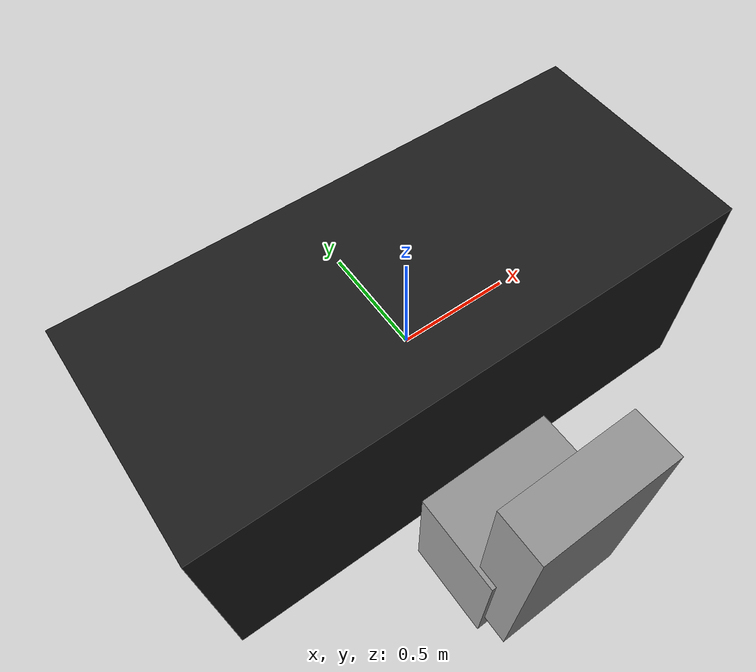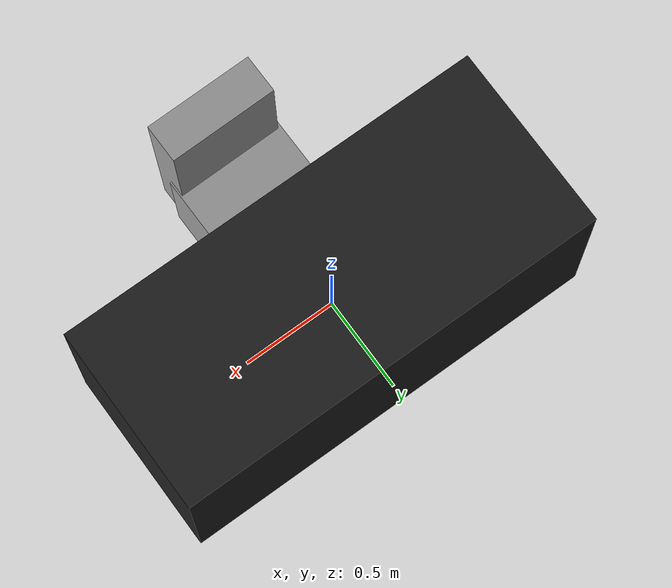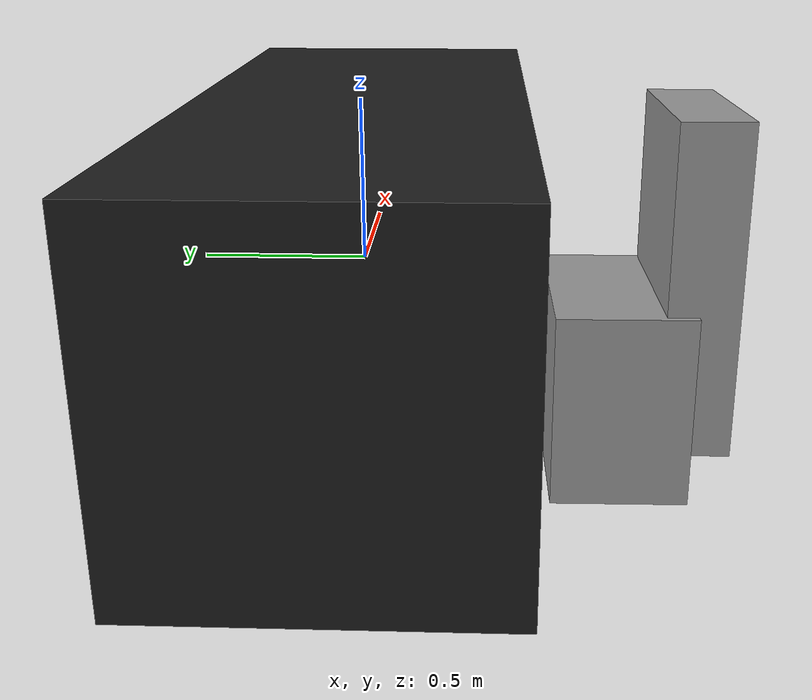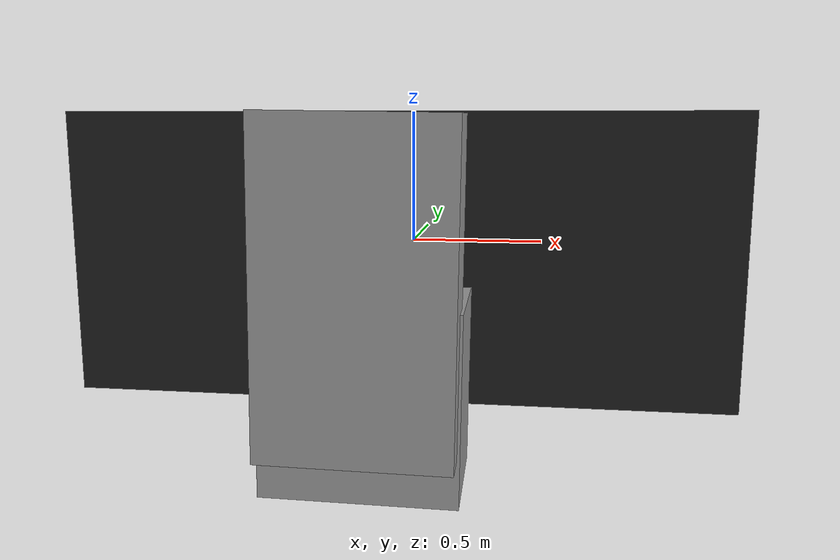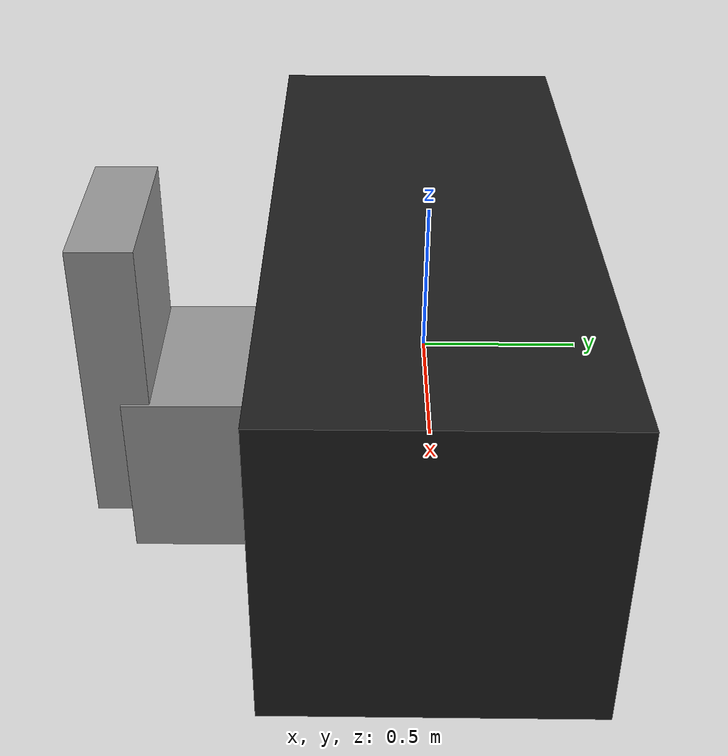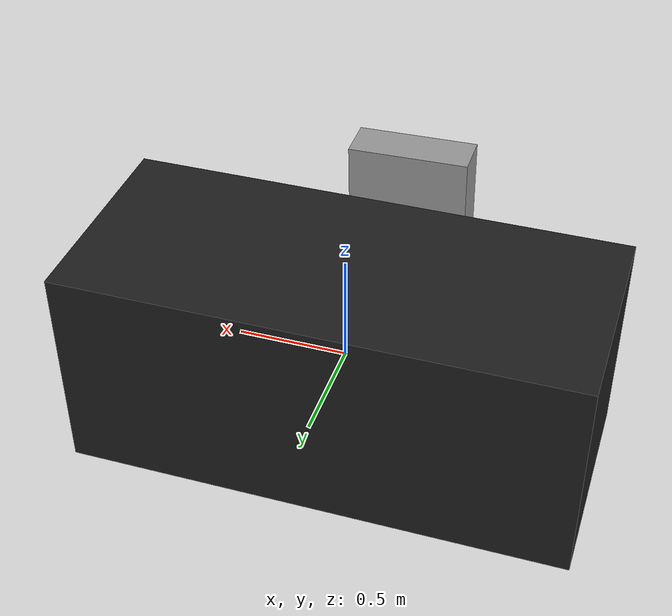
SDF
<?xml version='1.0'?>
<sdf version='1.7'>
  <model name='chair_table'>
    <link name='link'>
      <inertial>
        <mass>2.31605</mass>
        <inertia>
          <ixx>0.386008</ixx>
          <ixy>0</ixy>
          <ixz>0</ixz>
          <iyy>1.22828</iyy>
          <iyz>0</iyz>
          <izz>1.22828</izz>
        </inertia>
        <pose>0 0 0 0 -0 0</pose>
      </inertial>
      <self_collide>0</self_collide>
      <enable_wind>0</enable_wind>
      <kinematic>0</kinematic>
      <pose>0 0 0 0 -0 0</pose>
      <visual name='visual'>
        <geometry>
          <box>
            <size>2.31604 1 1</size>
          </box>
        </geometry>
        <material>
          <script>
            <name>Gazebo/Black</name>
            <uri>file://media/materials/scripts/gazebo.material</uri>
          </script>
          <shader type='pixel'/>
        </material>
        <pose>0 0 0 0 -0 0</pose>
        <transparency>0</transparency>
        <cast_shadows>1</cast_shadows>
      </visual>
      <collision name='collision'>
        <laser_retro>0</laser_retro>
        <max_contacts>10</max_contacts>
        <pose>0 0 0 0 -0 0</pose>
        <geometry>
          <box>
            <size>2.31604 1 1</size>
          </box>
        </geometry>
        <surface>
          <friction>
            <ode>
              <mu>1</mu>
              <mu2>1</mu2>
              <fdir1>0 0 0</fdir1>
              <slip1>0</slip1>
              <slip2>0</slip2>
            </ode>
            <torsional>
              <coefficient>1</coefficient>
              <patch_radius>0</patch_radius>
              <surface_radius>0</surface_radius>
              <use_patch_radius>1</use_patch_radius>
              <ode>
                <slip>0</slip>
              </ode>
            </torsional>
          </friction>
          <bounce>
            <restitution_coefficient>0</restitution_coefficient>
            <threshold>1e+06</threshold>
          </bounce>
          <contact>
            <collide_without_contact>0</collide_without_contact>
            <collide_without_contact_bitmask>1</collide_without_contact_bitmask>
            <collide_bitmask>1</collide_bitmask>
            <ode>
              <soft_cfm>0</soft_cfm>
              <soft_erp>0.2</soft_erp>
              <kp>1e+13</kp>
              <kd>1</kd>
              <max_vel>0.01</max_vel>
              <min_depth>0</min_depth>
            </ode>
            <bullet>
              <split_impulse>1</split_impulse>
              <split_impulse_penetration_threshold>-0.01</split_impulse_penetration_threshold>
              <soft_cfm>0</soft_cfm>
              <soft_erp>0.2</soft_erp>
              <kp>1e+13</kp>
              <kd>1</kd>
            </bullet>
          </contact>
        </surface>
      </collision>
    </link>
    <link name='link_0'>
      <inertial>
        <mass>0.148765</mass>
        <inertia>
          <ixx>0.00642282</ixx>
          <ixy>0</ixy>
          <ixz>0</ixz>
          <iyy>0.00896707</iyy>
          <iyz>0</iyz>
          <izz>0.00673768</izz>
        </inertia>
        <pose>0 0 0 0 -0 0</pose>
      </inertial>
      <pose>-0.041341 -0.781956 -0.365303 0.000137 0.014509 0.010278</pose>
      <visual name='visual'>
        <pose>0 0 0 0 -0 0</pose>
        <geometry>
          <box>
            <size>0.611849 0.411254 0.59073</size>
          </box>
        </geometry>
        <material>
          <lighting>1</lighting>
          <script>
            <uri>file://media/materials/scripts/gazebo.material</uri>
            <name>Gazebo/Grey</name>
          </script>
          <shader type='pixel'/>
        </material>
        <transparency>0</transparency>
        <cast_shadows>1</cast_shadows>
      </visual>
      <collision name='collision'>
        <laser_retro>0</laser_retro>
        <max_contacts>10</max_contacts>
        <pose>0 0 0 0 -0 0</pose>
        <geometry>
          <box>
            <size>0.611849 0.411254 0.59073</size>
          </box>
        </geometry>
        <surface>
          <friction>
            <ode>
              <mu>1</mu>
              <mu2>1</mu2>
              <fdir1>0 0 0</fdir1>
              <slip1>0</slip1>
              <slip2>0</slip2>
            </ode>
            <torsional>
              <coefficient>1</coefficient>
              <patch_radius>0</patch_radius>
              <surface_radius>0</surface_radius>
              <use_patch_radius>1</use_patch_radius>
              <ode>
                <slip>0</slip>
              </ode>
            </torsional>
          </friction>
          <bounce>
            <restitution_coefficient>0</restitution_coefficient>
            <threshold>1e+06</threshold>
          </bounce>
          <contact>
            <collide_without_contact>0</collide_without_contact>
            <collide_without_contact_bitmask>1</collide_without_contact_bitmask>
            <collide_bitmask>1</collide_bitmask>
            <ode>
              <soft_cfm>0</soft_cfm>
              <soft_erp>0.2</soft_erp>
              <kp>1e+13</kp>
              <kd>1</kd>
              <max_vel>0.01</max_vel>
              <min_depth>0</min_depth>
            </ode>
            <bullet>
              <split_impulse>1</split_impulse>
              <split_impulse_penetration_threshold>-0.01</split_impulse_penetration_threshold>
              <soft_cfm>0</soft_cfm>
              <soft_erp>0.2</soft_erp>
              <kp>1e+13</kp>
              <kd>1</kd>
            </bullet>
          </contact>
        </surface>
      </collision>
    </link>
    <link name='link_1'>
      <inertial>
        <mass>0.122493</mass>
        <inertia>
          <ixx>0.0106573</ixx>
          <ixy>0</ixy>
          <ixz>0</ixz>
          <iyy>0.0136857</iyy>
          <iyz>0</iyz>
          <izz>0.00392744</izz>
        </inertia>
        <pose>0 0 0 0 -0 0</pose>
      </inertial>
      <pose>-0.029108 -0.999749 -0.006758 0.000137 0.014509 0.010278</pose>
      <visual name='visual'>
        <pose>0 0 0 0 -0 0</pose>
        <geometry>
          <box>
            <size>0.583706 0.209852 1</size>
          </box>
        </geometry>
        <material>
          <lighting>1</lighting>
          <script>
            <uri>file://media/materials/scripts/gazebo.material</uri>
            <name>Gazebo/Grey</name>
          </script>
          <shader type='pixel'/>
        </material>
        <transparency>0</transparency>
        <cast_shadows>1</cast_shadows>
      </visual>
      <collision name='collision'>
        <laser_retro>0</laser_retro>
        <max_contacts>10</max_contacts>
        <pose>0 0 0 0 -0 0</pose>
        <geometry>
          <box>
            <size>0.583706 0.209852 1</size>
          </box>
        </geometry>
        <surface>
          <friction>
            <ode>
              <mu>1</mu>
              <mu2>1</mu2>
              <fdir1>0 0 0</fdir1>
              <slip1>0</slip1>
              <slip2>0</slip2>
            </ode>
            <torsional>
              <coefficient>1</coefficient>
              <patch_radius>0</patch_radius>
              <surface_radius>0</surface_radius>
              <use_patch_radius>1</use_patch_radius>
              <ode>
                <slip>0</slip>
              </ode>
            </torsional>
          </friction>
          <bounce>
            <restitution_coefficient>0</restitution_coefficient>
            <threshold>1e+06</threshold>
          </bounce>
          <contact>
            <collide_without_contact>0</collide_without_contact>
            <collide_without_contact_bitmask>1</collide_without_contact_bitmask>
            <collide_bitmask>1</collide_bitmask>
            <ode>
              <soft_cfm>0</soft_cfm>
              <soft_erp>0.2</soft_erp>
              <kp>1e+13</kp>
              <kd>1</kd>
              <max_vel>0.01</max_vel>
              <min_depth>0</min_depth>
            </ode>
            <bullet>
              <split_impulse>1</split_impulse>
              <split_impulse_penetration_threshold>-0.01</split_impulse_penetration_threshold>
              <soft_cfm>0</soft_cfm>
              <soft_erp>0.2</soft_erp>
              <kp>1e+13</kp>
              <kd>1</kd>
            </bullet>
          </contact>
        </surface>
      </collision>
    </link>
    <static>1</static>
    <allow_auto_disable>1</allow_auto_disable>
  </model>
</sdf>
